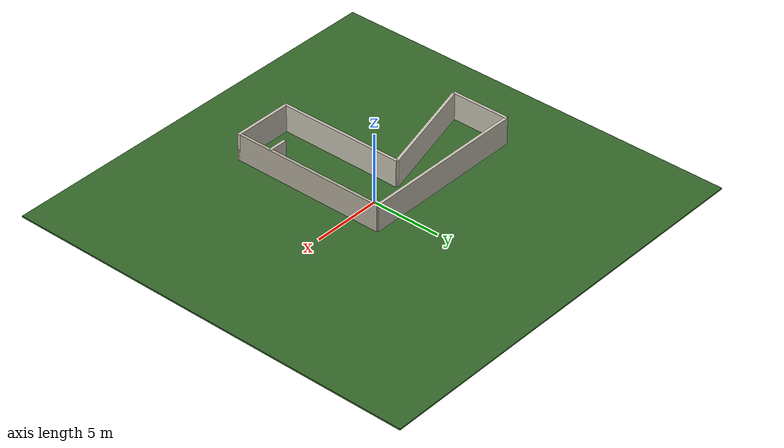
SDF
<?xml version="1.0"?>
<sdf version="1.10">
  <world name="delivery_scenario">
    <gravity>0 0 -9.81</gravity>
    <magnetic_field>6.0e-6 2.3e-5 -4.2e-5</magnetic_field>
    <atmosphere type="adiabatic"/>

    <physics name="physics" type="ignored">
      <max_step_size>0.001</max_step_size>
      <real_time_factor>1.0</real_time_factor>
    </physics>

    <plugin
      filename="gz-sim-physics-system"
      name="gz::sim::systems::Physics"/>
    <plugin
      filename="gz-sim-user-commands-system"
      name="gz::sim::systems::UserCommands"/>
    <plugin
      filename="gz-sim-scene-broadcaster-system"
      name="gz::sim::systems::SceneBroadcaster"/>
    <plugin
      filename="gz-sim-sensors-system"
      name="gz::sim::systems::Sensors">
      <render_engine>ogre2</render_engine>
    </plugin>

    <scene>
      <ambient>0.65 0.65 0.65 1</ambient>
      <background>0.78 0.86 0.95 1</background>
      <shadows>true</shadows>
      <grid>false</grid>
    </scene>

    <light name="sun" type="directional">
      <cast_shadows>true</cast_shadows>
      <pose>0 0 12 0 0 0</pose>
      <diffuse>0.85 0.85 0.85 1</diffuse>
      <specular>0.20 0.20 0.20 1</specular>
      <attenuation>
        <range>1000</range>
        <constant>0.9</constant>
        <linear>0.01</linear>
        <quadratic>0.001</quadratic>
      </attenuation>
      <direction>-0.4 0.2 -0.9</direction>
    </light>

    <model name="environment">
      <static>true</static>

      <link name="ground">
        <collision name="collision">
          <geometry>
            <box>
              <size>30 30 0.10</size>
            </box>
          </geometry>
        </collision>
        <visual name="visual">
          <geometry>
            <box>
              <size>30 30 0.10</size>
            </box>
          </geometry>
          <material>
            <ambient>0.16 0.32 0.12 1</ambient>
            <diffuse>0.20 0.40 0.16 1</diffuse>
          </material>
        </visual>
      </link>

      <link name="north_approach_wall">
        <pose>-3.95 2.10 1.0 0 0 0</pose>
        <collision name="collision">
          <geometry>
            <box>
              <size>12.10 0.20 2.0</size>
            </box>
          </geometry>
        </collision>
        <visual name="visual">
          <geometry>
            <box>
              <size>12.10 0.20 2.0</size>
            </box>
          </geometry>
          <material>
            <ambient>0.72 0.70 0.65 1</ambient>
            <diffuse>0.78 0.76 0.70 1</diffuse>
          </material>
        </visual>
      </link>

      <link name="west_start_wall">
        <pose>-10.0 0 1.0 0 0 0</pose>
        <collision name="collision">
          <geometry>
            <box>
              <size>0.20 4.20 2.0</size>
            </box>
          </geometry>
        </collision>
        <visual name="visual">
          <geometry>
            <box>
              <size>0.20 4.20 2.0</size>
            </box>
          </geometry>
          <material>
            <ambient>0.72 0.70 0.65 1</ambient>
            <diffuse>0.78 0.76 0.70 1</diffuse>
          </material>
        </visual>
      </link>

      <link name="south_approach_wall">
        <!-- The rising inner wall makes the street narrower at the corner. -->
        <pose>-6.05 -1.05 1.0 0 0 0.2598</pose>
        <collision name="collision">
          <geometry>
            <box>
              <size>8.17 0.20 2.0</size>
            </box>
          </geometry>
        </collision>
        <visual name="visual">
          <geometry>
            <box>
              <size>8.17 0.20 2.0</size>
            </box>
          </geometry>
          <material>
            <ambient>0.72 0.70 0.65 1</ambient>
            <diffuse>0.78 0.76 0.70 1</diffuse>
          </material>
        </visual>
      </link>

      <link name="west_destination_wall">
        <pose>-2.10 -4.55 1.0 0 0 0</pose>
        <collision name="collision">
          <geometry>
            <box>
              <size>0.20 9.10 2.0</size>
            </box>
          </geometry>
        </collision>
        <visual name="visual">
          <geometry>
            <box>
              <size>0.20 9.10 2.0</size>
            </box>
          </geometry>
          <material>
            <ambient>0.72 0.70 0.65 1</ambient>
            <diffuse>0.78 0.76 0.70 1</diffuse>
          </material>
        </visual>
      </link>

      <link name="east_destination_wall">
        <pose>2.10 -3.50 1.0 0 0 0</pose>
        <collision name="collision">
          <geometry>
            <box>
              <size>0.20 11.20 2.0</size>
            </box>
          </geometry>
        </collision>
        <visual name="visual">
          <geometry>
            <box>
              <size>0.20 11.20 2.0</size>
            </box>
          </geometry>
          <material>
            <ambient>0.62 0.60 0.56 1</ambient>
            <diffuse>0.70 0.68 0.62 1</diffuse>
          </material>
        </visual>
      </link>

      <link name="end_wall">
        <pose>0 -9.10 1.0 0 0 0</pose>
        <collision name="collision">
          <geometry>
            <box>
              <size>4.4 0.20 2.0</size>
            </box>
          </geometry>
        </collision>
        <visual name="visual">
          <geometry>
            <box>
              <size>4.4 0.20 2.0</size>
            </box>
          </geometry>
          <material>
            <ambient>0.72 0.70 0.65 1</ambient>
            <diffuse>0.78 0.76 0.70 1</diffuse>
          </material>
        </visual>
      </link>

      <link name="wall_near_b">
        <pose>1.45 -6.55 1.0 0 0 0</pose>
        <collision name="collision">
          <geometry>
            <box>
              <size>1.30 0.20 2.0</size>
            </box>
          </geometry>
        </collision>
        <visual name="visual">
          <geometry>
            <box>
              <size>1.30 0.20 2.0</size>
            </box>
          </geometry>
          <material>
            <ambient>0.72 0.70 0.65 1</ambient>
            <diffuse>0.78 0.76 0.70 1</diffuse>
          </material>
        </visual>
      </link>
    </model>

    <model name="delivery_area_b">
      <static>true</static>
      <pose>1.25 -7.8 0 0 0 0</pose>
      <link name="delivery_area">
        <visual name="marker">
          <pose>0 0 0.06 0 0 0</pose>
          <geometry>
            <box>
              <size>1.20 1.20 0.02</size>
            </box>
          </geometry>
          <material>
            <ambient>0.08 0.75 0.15 1</ambient>
            <diffuse>0.10 0.90 0.20 1</diffuse>
            <emissive>0.02 0.15 0.03 1</emissive>
          </material>
        </visual>
      </link>
    </model>
  </world>
</sdf>
